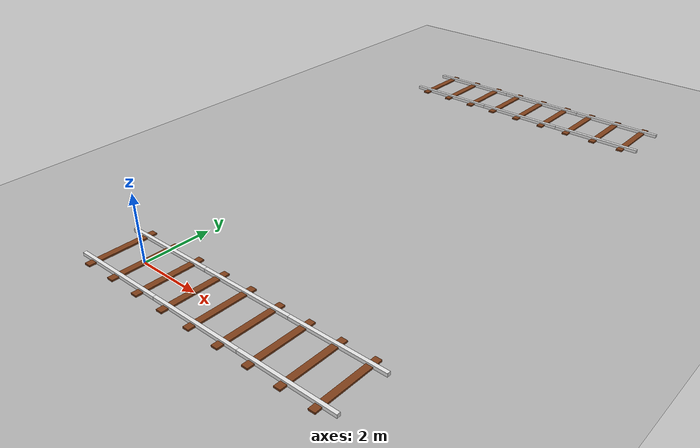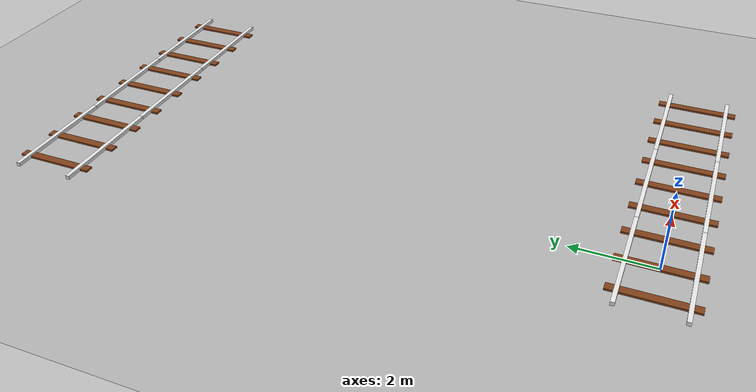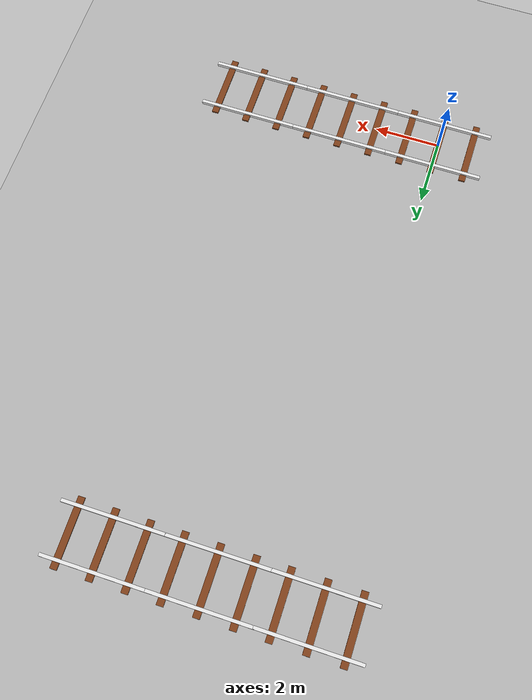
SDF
<sdf version="1.10">
 <world name="myworld">
  <model name="rail1">
   <static>true</static>
   <link name="rail_link">
    <visual name="rail_left">
     <pose>0 0.75 0.050000000000000003 0 0 0</pose>
     <geometry><box><size>3 0.10000000000000001 0.10000000000000001</size></box></geometry>
     <material>
      <ambient>0.800000012 0.800000012 0.800000012 1</ambient>
      <diffuse>0.899999976 0.899999976 0.899999976 1</diffuse>
     </material>
    </visual>
    <visual name="rail_right">
     <pose>0 -0.75 0.050000000000000003 0 0 0</pose>
     <geometry><box><size>3 0.10000000000000001 0.10000000000000001</size></box></geometry>
     <material>
      <ambient>0.800000012 0.800000012 0.800000012 1</ambient>
      <diffuse>0.899999976 0.899999976 0.899999976 1</diffuse>
     </material>
    </visual>
    <visual name="traverse_1">
     <pose>1 0 0.025000000000000001 0 0 0</pose>
     <geometry><box><size>0.20000000000000001 2 0.050000000000000003</size></box></geometry>
     <material>
      <ambient>0.400000006 0.200000003 0.100000001 1</ambient>
      <diffuse>0.5 0.25 0.100000001 1</diffuse>
     </material>
    </visual>
    <visual name="traverse_2">
     <pose>0 0 0.025000000000000001 0 0 0</pose>
     <geometry><box><size>0.20000000000000001 2 0.050000000000000003</size></box></geometry>
     <material>
      <ambient>0.400000006 0.200000003 0.100000001 1</ambient>
      <diffuse>0.5 0.25 0.100000001 1</diffuse>
     </material>
    </visual>
    <visual name="traverse_3">
     <pose>-1 0 0.025000000000000001 0 0 0</pose>
     <geometry><box><size>0.20000000000000001 2 0.050000000000000003</size></box></geometry>
     <material>
      <ambient>0.400000006 0.200000003 0.100000001 1</ambient>
      <diffuse>0.5 0.25 0.100000001 1</diffuse>
     </material>
    </visual>
    <inertial>
     <mass>1</mass>
     <inertia><ixx>1</ixx><ixy>0</ixy><ixz>0</ixz><iyy>1</iyy><iyz>0</iyz><izz>1</izz></inertia>
    </inertial>
   </link>
  </model>
  <model name="rail2">
   <static>true</static>
   <pose>3 0 0 0 0 0</pose>
   <link name="rail_link">
    <visual name="rail_left">
     <pose>0 0.75 0.050000000000000003 0 0 0</pose>
     <geometry><box><size>3 0.10000000000000001 0.10000000000000001</size></box></geometry>
     <material>
      <ambient>0.800000012 0.800000012 0.800000012 1</ambient>
      <diffuse>0.899999976 0.899999976 0.899999976 1</diffuse>
     </material>
    </visual>
    <visual name="rail_right">
     <pose>0 -0.75 0.050000000000000003 0 0 0</pose>
     <geometry><box><size>3 0.10000000000000001 0.10000000000000001</size></box></geometry>
     <material>
      <ambient>0.800000012 0.800000012 0.800000012 1</ambient>
      <diffuse>0.899999976 0.899999976 0.899999976 1</diffuse>
     </material>
    </visual>
    <visual name="traverse_1">
     <pose>1 0 0.025000000000000001 0 0 0</pose>
     <geometry><box><size>0.20000000000000001 2 0.050000000000000003</size></box></geometry>
     <material>
      <ambient>0.400000006 0.200000003 0.100000001 1</ambient>
      <diffuse>0.5 0.25 0.100000001 1</diffuse>
     </material>
    </visual>
    <visual name="traverse_2">
     <pose>0 0 0.025000000000000001 0 0 0</pose>
     <geometry><box><size>0.20000000000000001 2 0.050000000000000003</size></box></geometry>
     <material>
      <ambient>0.400000006 0.200000003 0.100000001 1</ambient>
      <diffuse>0.5 0.25 0.100000001 1</diffuse>
     </material>
    </visual>
    <visual name="traverse_3">
     <pose>-1 0 0.025000000000000001 0 0 0</pose>
     <geometry><box><size>0.20000000000000001 2 0.050000000000000003</size></box></geometry>
     <material>
      <ambient>0.400000006 0.200000003 0.100000001 1</ambient>
      <diffuse>0.5 0.25 0.100000001 1</diffuse>
     </material>
    </visual>
    <inertial>
     <mass>1</mass>
     <inertia><ixx>1</ixx><ixy>0</ixy><ixz>0</ixz><iyy>1</iyy><iyz>0</iyz><izz>1</izz></inertia>
    </inertial>
   </link>
  </model>
  <model name="rail3">
   <static>true</static>
   <pose>6 0 0 0 0 0</pose>
   <link name="rail_link">
    <visual name="rail_left">
     <pose>0 0.75 0.050000000000000003 0 0 0</pose>
     <geometry><box><size>3 0.10000000000000001 0.10000000000000001</size></box></geometry>
     <material>
      <ambient>0.800000012 0.800000012 0.800000012 1</ambient>
      <diffuse>0.899999976 0.899999976 0.899999976 1</diffuse>
     </material>
    </visual>
    <visual name="rail_right">
     <pose>0 -0.75 0.050000000000000003 0 0 0</pose>
     <geometry><box><size>3 0.10000000000000001 0.10000000000000001</size></box></geometry>
     <material>
      <ambient>0.800000012 0.800000012 0.800000012 1</ambient>
      <diffuse>0.899999976 0.899999976 0.899999976 1</diffuse>
     </material>
    </visual>
    <visual name="traverse_1">
     <pose>1 0 0.025000000000000001 0 0 0</pose>
     <geometry><box><size>0.20000000000000001 2 0.050000000000000003</size></box></geometry>
     <material>
      <ambient>0.400000006 0.200000003 0.100000001 1</ambient>
      <diffuse>0.5 0.25 0.100000001 1</diffuse>
     </material>
    </visual>
    <visual name="traverse_2">
     <pose>0 0 0.025000000000000001 0 0 0</pose>
     <geometry><box><size>0.20000000000000001 2 0.050000000000000003</size></box></geometry>
     <material>
      <ambient>0.400000006 0.200000003 0.100000001 1</ambient>
      <diffuse>0.5 0.25 0.100000001 1</diffuse>
     </material>
    </visual>
    <visual name="traverse_3">
     <pose>-1 0 0.025000000000000001 0 0 0</pose>
     <geometry><box><size>0.20000000000000001 2 0.050000000000000003</size></box></geometry>
     <material>
      <ambient>0.400000006 0.200000003 0.100000001 1</ambient>
      <diffuse>0.5 0.25 0.100000001 1</diffuse>
     </material>
    </visual>
    <inertial>
     <mass>1</mass>
     <inertia><ixx>1</ixx><ixy>0</ixy><ixz>0</ixz><iyy>1</iyy><iyz>0</iyz><izz>1</izz></inertia>
    </inertial>
   </link>
  </model>
  <model name="ground_plane">
   <static>true</static>
   <link name="link">
    <collision name="collision">
     <geometry><plane><normal>0 0 1</normal><size>1000 1000</size></plane></geometry>
    </collision>
    <visual name="visual">
     <geometry><plane><normal>0 0 1</normal><size>1000 1000</size></plane></geometry>
     <material>
      <ambient>0.699999988 0.699999988 0.699999988 1</ambient>
      <diffuse>0.699999988 0.699999988 0.699999988 1</diffuse>
     </material>
    </visual>
    <inertial>
     <mass>1</mass>
     <inertia><ixx>1</ixx><ixy>0</ixy><ixz>0</ixz><iyy>1</iyy><iyz>0</iyz><izz>1</izz></inertia>
    </inertial>
   </link>
  </model>
  <model name="rail1_1">
   <static>true</static>
   <pose>-0.58130899999999996 14.5310300000000003 0 0 0 0</pose>
   <link name="rail_link">
    <visual name="rail_left">
     <pose>0 0.75 0.050000000000000003 0 0 0</pose>
     <geometry><box><size>3 0.10000000000000001 0.10000000000000001</size></box></geometry>
     <material>
      <ambient>0.800000012 0.800000012 0.800000012 1</ambient>
      <diffuse>0.899999976 0.899999976 0.899999976 1</diffuse>
     </material>
    </visual>
    <visual name="rail_right">
     <pose>0 -0.75 0.050000000000000003 0 0 0</pose>
     <geometry><box><size>3 0.10000000000000001 0.10000000000000001</size></box></geometry>
     <material>
      <ambient>0.800000012 0.800000012 0.800000012 1</ambient>
      <diffuse>0.899999976 0.899999976 0.899999976 1</diffuse>
     </material>
    </visual>
    <visual name="traverse_1">
     <pose>1 0 0.025000000000000001 0 0 0</pose>
     <geometry><box><size>0.20000000000000001 2 0.050000000000000003</size></box></geometry>
     <material>
      <ambient>0.400000006 0.200000003 0.100000001 1</ambient>
      <diffuse>0.5 0.25 0.100000001 1</diffuse>
     </material>
    </visual>
    <visual name="traverse_2">
     <pose>0 0 0.025000000000000001 0 0 0</pose>
     <geometry><box><size>0.20000000000000001 2 0.050000000000000003</size></box></geometry>
     <material>
      <ambient>0.400000006 0.200000003 0.100000001 1</ambient>
      <diffuse>0.5 0.25 0.100000001 1</diffuse>
     </material>
    </visual>
    <visual name="traverse_3">
     <pose>-1 0 0.025000000000000001 0 0 0</pose>
     <geometry><box><size>0.20000000000000001 2 0.050000000000000003</size></box></geometry>
     <material>
      <ambient>0.400000006 0.200000003 0.100000001 1</ambient>
      <diffuse>0.5 0.25 0.100000001 1</diffuse>
     </material>
    </visual>
   </link>
  </model>
  <model name="rail1_2">
   <static>true</static>
   <pose>2.3863599999999998 14.5340400000000001 0 0 0 0</pose>
   <link name="rail_link">
    <visual name="rail_left">
     <pose>0 0.75 0.050000000000000003 0 0 0</pose>
     <geometry><box><size>3 0.10000000000000001 0.10000000000000001</size></box></geometry>
     <material>
      <ambient>0.800000012 0.800000012 0.800000012 1</ambient>
      <diffuse>0.899999976 0.899999976 0.899999976 1</diffuse>
     </material>
    </visual>
    <visual name="rail_right">
     <pose>0 -0.75 0.050000000000000003 0 0 0</pose>
     <geometry><box><size>3 0.10000000000000001 0.10000000000000001</size></box></geometry>
     <material>
      <ambient>0.800000012 0.800000012 0.800000012 1</ambient>
      <diffuse>0.899999976 0.899999976 0.899999976 1</diffuse>
     </material>
    </visual>
    <visual name="traverse_1">
     <pose>1 0 0.025000000000000001 0 0 0</pose>
     <geometry><box><size>0.20000000000000001 2 0.050000000000000003</size></box></geometry>
     <material>
      <ambient>0.400000006 0.200000003 0.100000001 1</ambient>
      <diffuse>0.5 0.25 0.100000001 1</diffuse>
     </material>
    </visual>
    <visual name="traverse_2">
     <pose>0 0 0.025000000000000001 0 0 0</pose>
     <geometry><box><size>0.20000000000000001 2 0.050000000000000003</size></box></geometry>
     <material>
      <ambient>0.400000006 0.200000003 0.100000001 1</ambient>
      <diffuse>0.5 0.25 0.100000001 1</diffuse>
     </material>
    </visual>
    <visual name="traverse_3">
     <pose>-1 0 0.025000000000000001 0 0 0</pose>
     <geometry><box><size>0.20000000000000001 2 0.050000000000000003</size></box></geometry>
     <material>
      <ambient>0.400000006 0.200000003 0.100000001 1</ambient>
      <diffuse>0.5 0.25 0.100000001 1</diffuse>
     </material>
    </visual>
   </link>
  </model>
  <model name="rail1_3">
   <static>true</static>
   <pose>5.3673400000000004 14.5343799999999996 0 0 0 0</pose>
   <link name="rail_link">
    <visual name="rail_left">
     <pose>0 0.75 0.050000000000000003 0 0 0</pose>
     <geometry><box><size>3 0.10000000000000001 0.10000000000000001</size></box></geometry>
     <material>
      <ambient>0.800000012 0.800000012 0.800000012 1</ambient>
      <diffuse>0.899999976 0.899999976 0.899999976 1</diffuse>
     </material>
    </visual>
    <visual name="rail_right">
     <pose>0 -0.75 0.050000000000000003 0 0 0</pose>
     <geometry><box><size>3 0.10000000000000001 0.10000000000000001</size></box></geometry>
     <material>
      <ambient>0.800000012 0.800000012 0.800000012 1</ambient>
      <diffuse>0.899999976 0.899999976 0.899999976 1</diffuse>
     </material>
    </visual>
    <visual name="traverse_1">
     <pose>1 0 0.025000000000000001 0 0 0</pose>
     <geometry><box><size>0.20000000000000001 2 0.050000000000000003</size></box></geometry>
     <material>
      <ambient>0.400000006 0.200000003 0.100000001 1</ambient>
      <diffuse>0.5 0.25 0.100000001 1</diffuse>
     </material>
    </visual>
    <visual name="traverse_2">
     <pose>0 0 0.025000000000000001 0 0 0</pose>
     <geometry><box><size>0.20000000000000001 2 0.050000000000000003</size></box></geometry>
     <material>
      <ambient>0.400000006 0.200000003 0.100000001 1</ambient>
      <diffuse>0.5 0.25 0.100000001 1</diffuse>
     </material>
    </visual>
    <visual name="traverse_3">
     <pose>-1 0 0.025000000000000001 0 0 0</pose>
     <geometry><box><size>0.20000000000000001 2 0.050000000000000003</size></box></geometry>
     <material>
      <ambient>0.400000006 0.200000003 0.100000001 1</ambient>
      <diffuse>0.5 0.25 0.100000001 1</diffuse>
     </material>
    </visual>
   </link>
  </model>
 </world>
</sdf>
